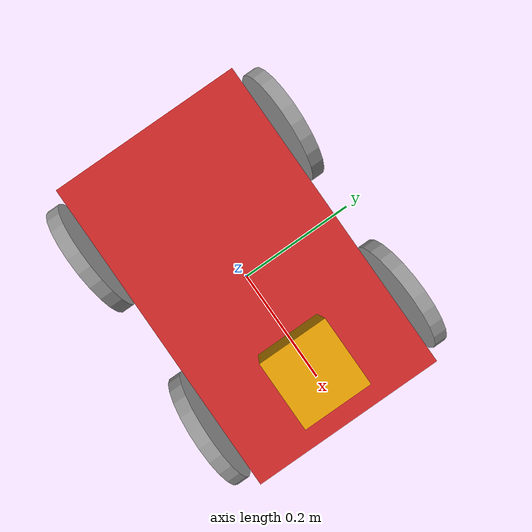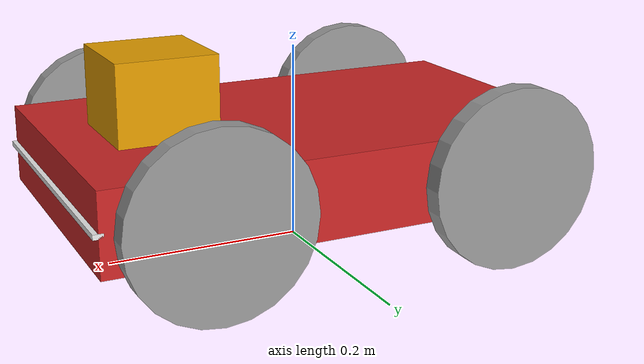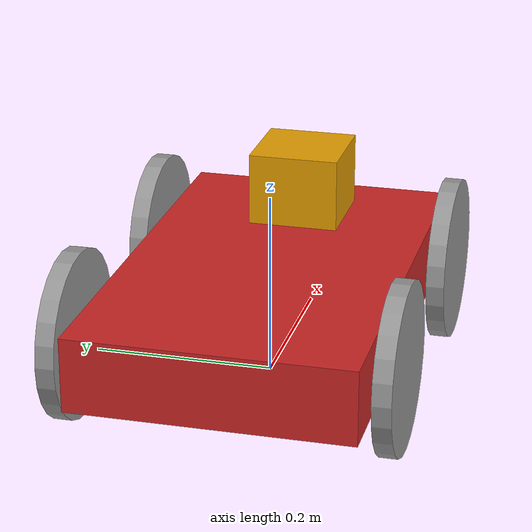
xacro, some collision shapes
<?xml version='1.0'?>

<robot name="my_robot" xmlns:xacro="http://www.ros.org/wiki/xacro">
<xacro:include filename="$(find my_robot)/urdf/my_robot.gazebo"/>

  <link name="robot_footprint"></link>

    <joint name="robot_footprint_joint" type="fixed">
     <!-- To prevent "half-sunk" behaviour with overlayed map in RViz (knowledge.udacity.com/questions/150890) -->
     <origin xyz="0 0 0.09" rpy="0 0 0"/>
     <parent link="robot_footprint"/>
     <child link="chassis"/>
    </joint>

    <link name="chassis">
      <pose>0 0 0.1 0 0 0</pose>

      <inertial>
        <mass value="15.0"/>
        <origin xyz="0 0 0" rpy="0 0 0"/>
        <inertia
          ixx="0.1" ixy="0" ixz="0"
          iyy="0.1" iyz="0"
          izz="0.1"
        />
      </inertial>

      <collision name="collision">
        <origin xyz="0 0 0" rpy="0 0 0"/>
        <geometry>
          <box size="0.5 0.3 0.08"/>
        </geometry>
      </collision>

      <visual name="chassis_visual">
        <origin xyz="0 0 0" rpy="0 0 0"/>
        <geometry>
          <box size="0.5 0.3 0.08"/>
        </geometry>
      </visual>

    </link>

    <link name="left_wheel_rear">

      <inertial>
        <mass value="5"/>
        <origin xyz="0 0 0" rpy="0 1.5707 1.5707"/>
        <inertia
          ixx="0.1" ixy="0" ixz="0"
          iyy="0.1" iyz="0"
          izz="0.1"
        />
      </inertial>

      <collision name="left_wheel_rear_collision">
        <origin xyz="0 0 0" rpy="0 1.5707 1.5707"/>
        <geometry>
          <cylinder radius="0.09" length="0.02"/>
        </geometry>
      </collision>

      <visual name="left_wheel_rear_visual">
        <origin xyz="0 0 0" rpy="0 1.5707 1.5707"/>
        <geometry>
          <cylinder radius="0.09" length="0.02"/>
        </geometry>
      </visual>

    </link>

    <joint type="continuous" name="left_wheel_rear_hinge">
      <origin xyz="-0.15 0.17 0" rpy="0 0 0"/>
      <child link="left_wheel_rear"/>
      <parent link="chassis"/>
      <axis xyz="0 1 0" rpy="0 0 0"/>
      <limit effort="10000" velocity="1000"/>
      <dynamics damping="1.0" friction="1.0"/>
    </joint>

    <link name="left_wheel_front">

      <inertial>
        <mass value="5"/>
        <origin xyz="0 0 0" rpy="0 1.5707 1.5707"/>
        <inertia
          ixx="0.1" ixy="0" ixz="0"
          iyy="0.1" iyz="0"
          izz="0.1"
        />
      </inertial>

      <collision name="left_wheel_front_collision">
        <origin xyz="0 0 0" rpy="0 1.5707 1.5707"/>
        <geometry>
          <cylinder radius="0.09" length="0.02"/>
        </geometry>
      </collision>

      <visual name="left_wheel_front_visual">
        <origin xyz="0 0 0" rpy="0 1.5707 1.5707"/>
        <geometry>
          <cylinder radius="0.09" length="0.02"/>
        </geometry>
      </visual>

    </link>

    <joint type="continuous" name="left_wheel_front_hinge">
      <origin xyz="0.15 0.17 0" rpy="0 0 0"/>
      <child link="left_wheel_front"/>
      <parent link="chassis"/>
      <axis xyz="0 1 0" rpy="0 0 0"/>
      <limit effort="10000" velocity="1000"/>
      <dynamics damping="1.0" friction="1.0"/>
    </joint>

    <link name="right_wheel_rear">

      <inertial>
        <mass value="5"/>
        <origin xyz="0 0 0" rpy="0 1.5707 1.5707"/>
        <inertia
          ixx="0.1" ixy="0" ixz="0"
          iyy="0.1" iyz="0"
          izz="0.1"
        />
      </inertial>

      <collision name="right_wheel_rear_collision">
        <origin xyz="0 0 0" rpy="0 1.5707 1.5707"/>
        <geometry>
          <cylinder radius="0.09" length="0.02"/>
        </geometry>
      </collision>

      <visual name="right_wheel_rear_visual">
        <origin xyz="0 0 0" rpy="0 1.5707 1.5707"/>
        <geometry>
          <cylinder radius="0.09" length="0.02"/>
        </geometry>
      </visual>

    </link>

    <joint type="continuous" name="right_wheel_rear_hinge">
      <origin xyz="-0.15 -0.17 0" rpy="0 0 0"/>
      <child link="right_wheel_rear"/>
      <parent link="chassis"/>
      <axis xyz="0 1 0" rpy="0 0 0"/>
      <limit effort="10000" velocity="1000"/>
      <dynamics damping="1.0" friction="1.0"/>
    </joint>

    <link name="right_wheel_front">

      <inertial>
        <mass value="5"/>
        <origin xyz="0 0 0" rpy="0 1.5707 1.5707"/>
        <inertia
          ixx="0.1" ixy="0" ixz="0"
          iyy="0.1" iyz="0"
          izz="0.1"
        />
      </inertial>

      <collision name="right_wheel_front_collision">
        <origin xyz="0 0 0" rpy="0 1.5707 1.5707"/>
        <geometry>
          <cylinder radius="0.09" length="0.02"/>
        </geometry>
      </collision>

      <visual name="right_wheel_front_visual">
        <origin xyz="0 0 0" rpy="0 1.5707 1.5707"/>
        <geometry>
          <cylinder radius="0.09" length="0.02"/>
        </geometry>
      </visual>

    </link>

    <joint type="continuous" name="right_wheel_front_hinge">
      <origin xyz="0.15 -0.17 0" rpy="0 0 0"/>
      <child link="right_wheel_front"/>
      <parent link="chassis"/>
      <axis xyz="0 1 0" rpy="0 0 0"/>
      <limit effort="10000" velocity="1000"/>
      <dynamics damping="1.0" friction="1.0"/>
    </joint>

    <link name="camera">

      <inertial>
        <mass value="0.1"/>
        <origin xyz="0 0 0" rpy="0 0 0"/>
        <inertia
          ixx="1e-6" ixy="0" ixz="0"
          iyy="1e-6" iyz="0"
          izz="1e-6"
        />
        <box_inertia m="0.1" x="0.01" y="0.3" z="0.005"/>
      </inertial>

      <collision>
        <origin xyz="0 0 0" rpy="0 0 0"/>
        <geometry>
          <box size="0.01 0.3 0.005"/>
        </geometry>
      </collision>

      <visual>
        <origin xyz="0 0 0" rpy="0 0 0"/>
        <geometry>
          <box size="0.01 0.3 0.005"/>
        </geometry>
      </visual>

    </link>

    <joint type="fixed" name="camera_joint">
      <origin xyz="0.25 0 0" rpy="0 0 0"/>
      <child link="camera"/>
      <parent link="chassis"/>
      <axis xyz="0 1 0" rpy="0 0 0"/>
      <limit effort="10000" velocity="1000"/>
      <dynamics damping="1.0" friction="1.0"/>
    </joint>

    <!-- RGB-D camera -->
    <joint type="fixed" name="camera_optical_joint">
      <origin xyz="0 0 0" rpy="-1.5707 0 -1.5707"/>
      <child link="camera_optical"/>
      <parent link="camera"/>
    </joint>

    <link name="camera_optical">

    </link>

  <link name="hokuyo">

    <inertial>
      <mass value="1e-5"/>
      <origin xyz="0 0 0" rpy="0 0 0"/>
      <inertia
        ixx="1e-6" ixy="0" ixz="0"
        iyy="1e-6" iyz="0"
        izz="1e-6"
      />
    </inertial>

    <collision>
      <origin xyz="0 0 0" rpy="0 0 0"/>
      <geometry>
        <box size="0.1 0.1 0.1"/>
      </geometry>
    </collision>

    <visual>
      <origin xyz="0 0 0" rpy="0 0 0"/>
      <geometry>
        <mesh filename="package://my_robot/meshes/hokuyo.dae"/>
      </geometry>
    </visual>

  </link>

  <joint type="fixed" name="hokuyo_joint">
    <origin xyz="0.15 0 0.07" rpy="0 0 0"/>
    <child link="hokuyo"/>
    <parent link="chassis"/>
    <axis xyz="0 1 0"/>
  </joint>

  <!-- wiki.ros.org/simulator_gazebo/Tutorials/ListOfMaterials -->
  <gazebo reference="left_wheel_rear">
    <material>Gazebo/Grey</material>
  </gazebo>

  <gazebo reference="left_wheel_front">
    <material>Gazebo/Grey</material>
  </gazebo>

  <gazebo reference="chassis">
    <material>Gazebo/Red</material>
  </gazebo>

  <gazebo reference="right_wheel_rear">
    <material>Gazebo/Grey</material>
  </gazebo>

  <gazebo reference="right_wheel_front">
    <material>Gazebo/Grey</material>
  </gazebo>

  <gazebo reference="camera">
    <material>Gazebo/White</material>
  </gazebo>

</robot>
